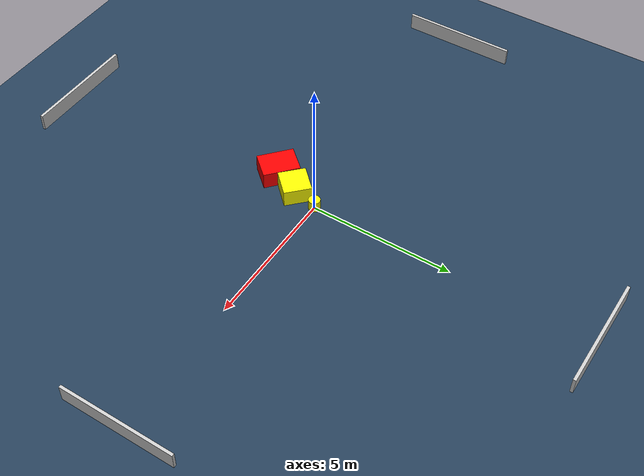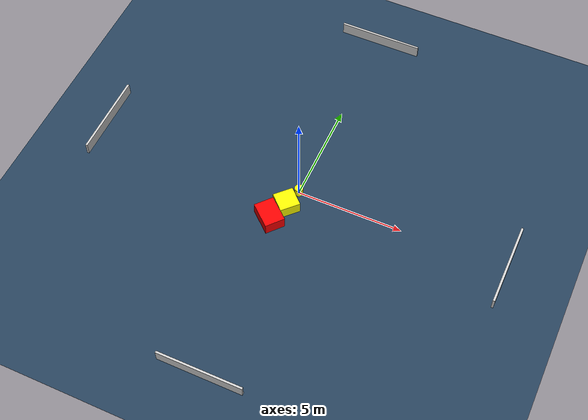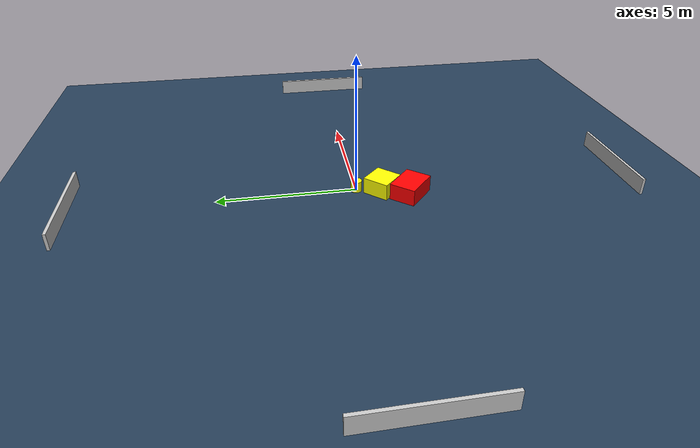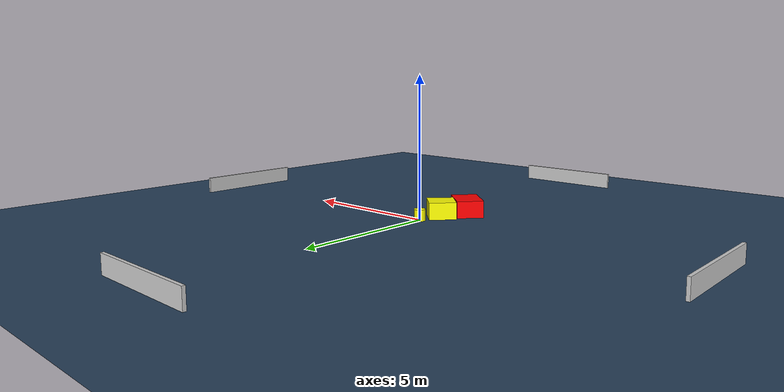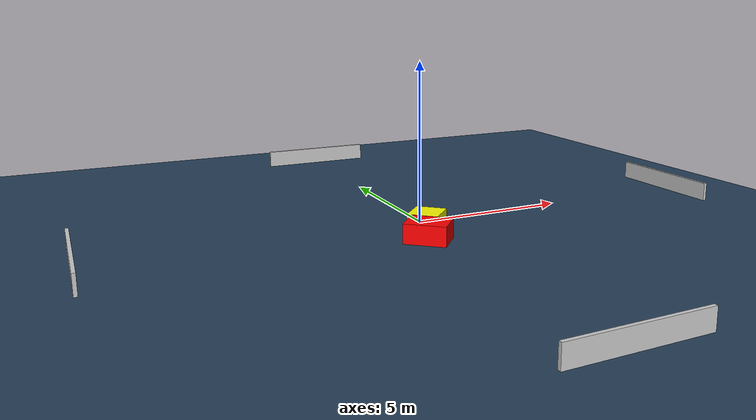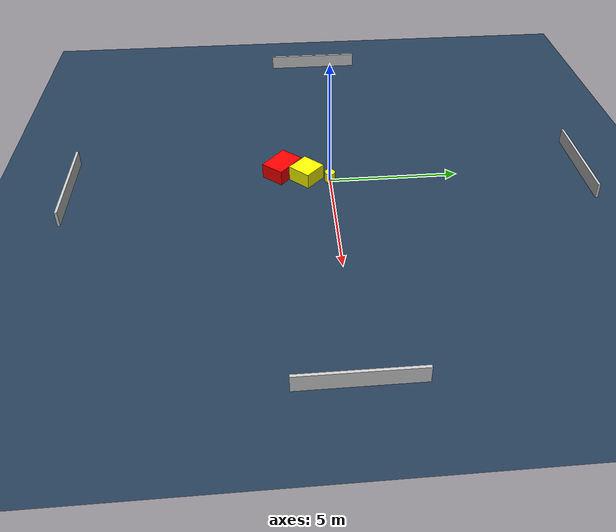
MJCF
<?xml version="1.0" ?>
<mujoco model="generated_environment">
  <option timestep="0.01" integrator="RK4" cone="elliptic"/>
  <default>
    <geom density="1"/>
  </default>
  <asset>
    <texture builtin="gradient" height="3072" name="skybox" rgb1="0.3 0.5 0.7" rgb2="0 0 0" type="skybox" width="512"/>
    <texture builtin="checker" height="300" name="groundplane" rgb1="0.2 0.3 0.4" rgb2="0.1 0.2 0.3" type="2d" width="300"/>
    <material name="groundplane" reflectance="0.2" texrepeat="5 5" texture="groundplane"/>
  </asset>
  <worldbody>
    <light dir="0 0 -1" directional="true" pos="0 0 1.5"/>
    <geom condim="3" friction="0.5 0.005 0.001" material="groundplane" name="floor" pos="0 0 0" size="0 0 0.05" type="plane"/>
    <body name="walls">
      <geom name="wall_1" condim="4" pos="-10.0 0.0 0.3" rgba="0.800000011920929 0.800000011920929 0.800000011920929 1.0" size="0.05 2.0 0.3" type="box"/>
      <geom name="wall_2" condim="4" pos="10.0 0.0 0.3" rgba="0.800000011920929 0.800000011920929 0.800000011920929 1.0" size="0.05 2.0 0.3" type="box"/>
      <geom name="wall_3" condim="4" pos="0.0 -10.0 0.3" rgba="0.800000011920929 0.800000011920929 0.800000011920929 1.0" size="2.0 0.05 0.3" type="box"/>
      <geom name="wall_4" condim="4" pos="0.0 10.0 0.3" rgba="0.800000011920929 0.800000011920929 0.800000011920929 1.0" size="2.0 0.05 0.3" type="box"/>
    </body>
    <body name="robot">
      <joint name="joint_x" type="slide" pos="0 0 0" axis="1 0 0"/>
      <joint name="joint_y" type="slide" pos="0 0 0" axis="0 1 0"/>
      <geom name="robot" type="cylinder" pos="0.0 0.0 0.2" size="0.2 0.2 0.0" mass="5.0" friction="1.0 0.005 0.0001" condim="4" rgba="1.0 1.0 0.0 1.0"/>
    </body>
    <body name="obstacle_1_movable">
      <geom name="obstacle_1_movable" condim="4" pos="-0.2094774847566591 -0.9055566845476353 0.3" euler="0 0 316.2410781053764" friction="0.0 0.005 0.001" rgba="1.0 1.0 0.0 1.0" size="0.47493260502242074 0.47962783548728377 0.3" type="box" mass="0.1"/>
      <joint type="free"/>
    </body>
    <body name="obstacle_2_static">
      <geom name="obstacle_2_static" condim="4" pos="-0.6306364225808924 -1.8383584403657591 0.3" euler="0 0 138.96491411461298" friction="0.0 0.005 0.001" rgba="1.0 0.0 0.0 1.0" size="0.6382851193592214 0.4731618992763284 0.3" type="box"/>
    </body>
  </worldbody>
  <actuator>
    <motor name="actuator_x" joint="joint_x" gear="1" ctrlrange="-1 1"/>
    <motor name="actuator_y" joint="joint_y" gear="1" ctrlrange="-1 1"/>
  </actuator>
</mujoco>
